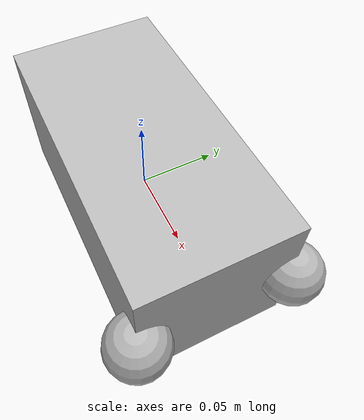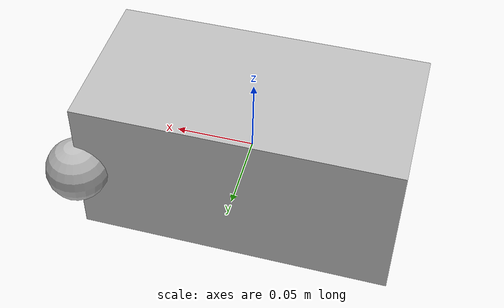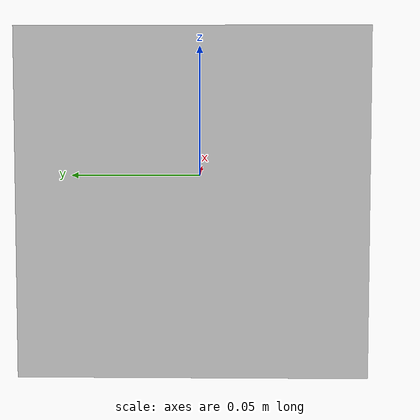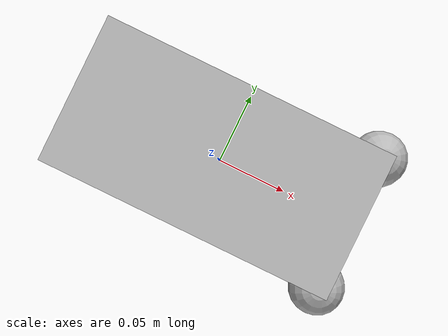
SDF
<?xml version='1.0' encoding='UTF-8'?>
<sdf version="1.6">
    <model name="stereo_camera_model">
        <static>true</static>
        <link name="base_link">
            <visual name="base_visual">
                <geometry>
                    <box>
                        <size>0.2 0.1 0.1</size>
                    </box>
                </geometry>
            </visual>
        </link>

        <!-- Left Camera -->
        <link name="left_camera_link">
            <pose>0.1 0.05 0 0 0 0</pose>
            <visual name="left_camera_visual">
                <geometry>
                    <sphere>
                        <radius>0.02</radius>
                    </sphere>
                </geometry>
            </visual>
            <sensor name="left_camera_sensor" type="camera">
                <camera>
          <vertical_fov>1.3962634</vertical_fov>
                    <image>
                        <width>1920</width>
                        <height>1440</height>
                    </image>
                    <clip>
                        <near>0.1</near>
                        <far>100</far>
                    </clip>
                </camera>
                <always_on>1</always_on>
                <update_rate>10</update_rate>
                <visualize>true</visualize>
                <topic>stereo_left</topic>
            </sensor>
        </link>

        <!-- Right Camera -->
        <link name="right_camera_link">
            <pose>0.1 -0.05 0 0 0 0</pose>
            <visual name="right_camera_visual">
                <geometry>
                    <sphere>
                        <radius>0.02</radius>
                    </sphere>
                </geometry>
            </visual>
            <sensor name="right_camera_sensor" type="camera">
                <camera>
          <vertical_fov>1.3962634</vertical_fov>
                    <image>
                        <width>1920</width>
                        <height>1440</height>
                    </image>
                    <clip>
                        <near>0.1</near>
                        <far>100</far>
                    </clip>
                </camera>
                <always_on>1</always_on>
                <update_rate>10</update_rate>
                <visualize>true</visualize>
                <topic>stereo_right</topic>
            </sensor>
        </link>
    </model>
</sdf>
